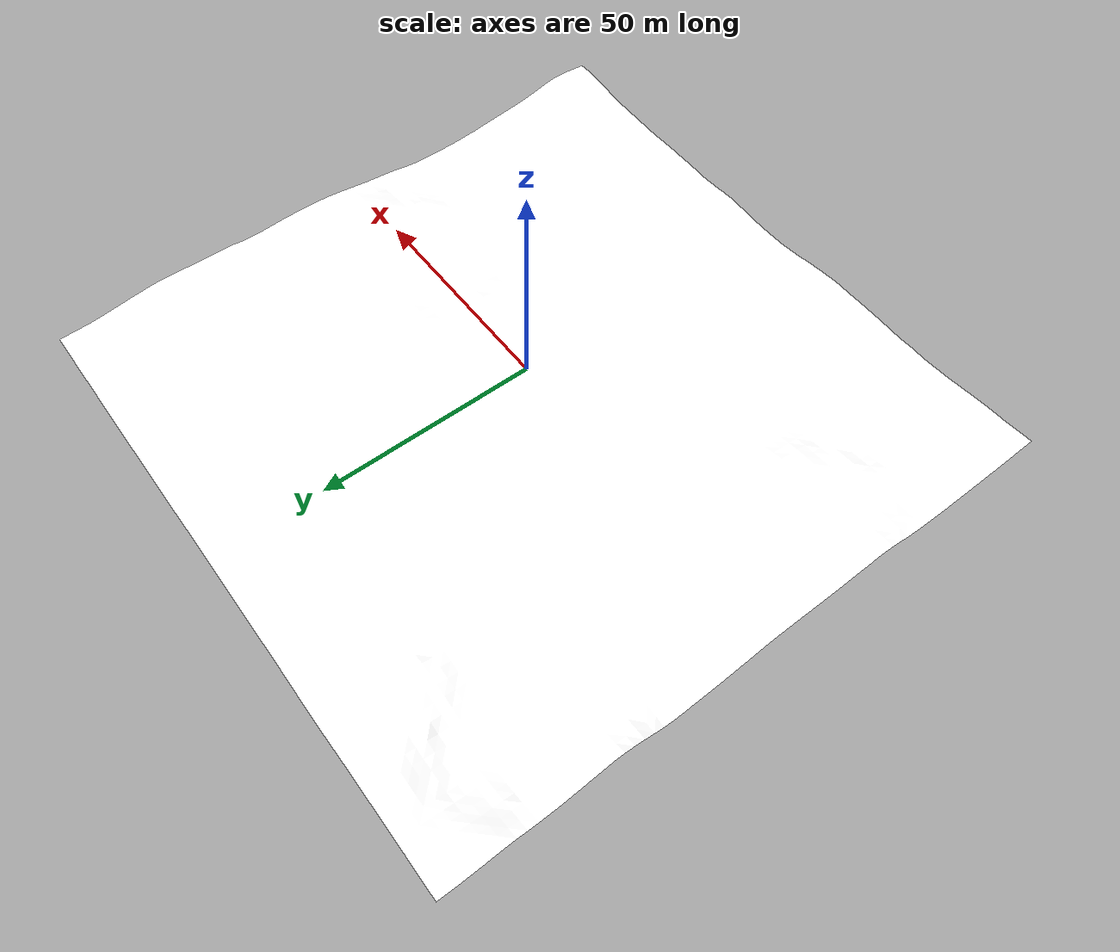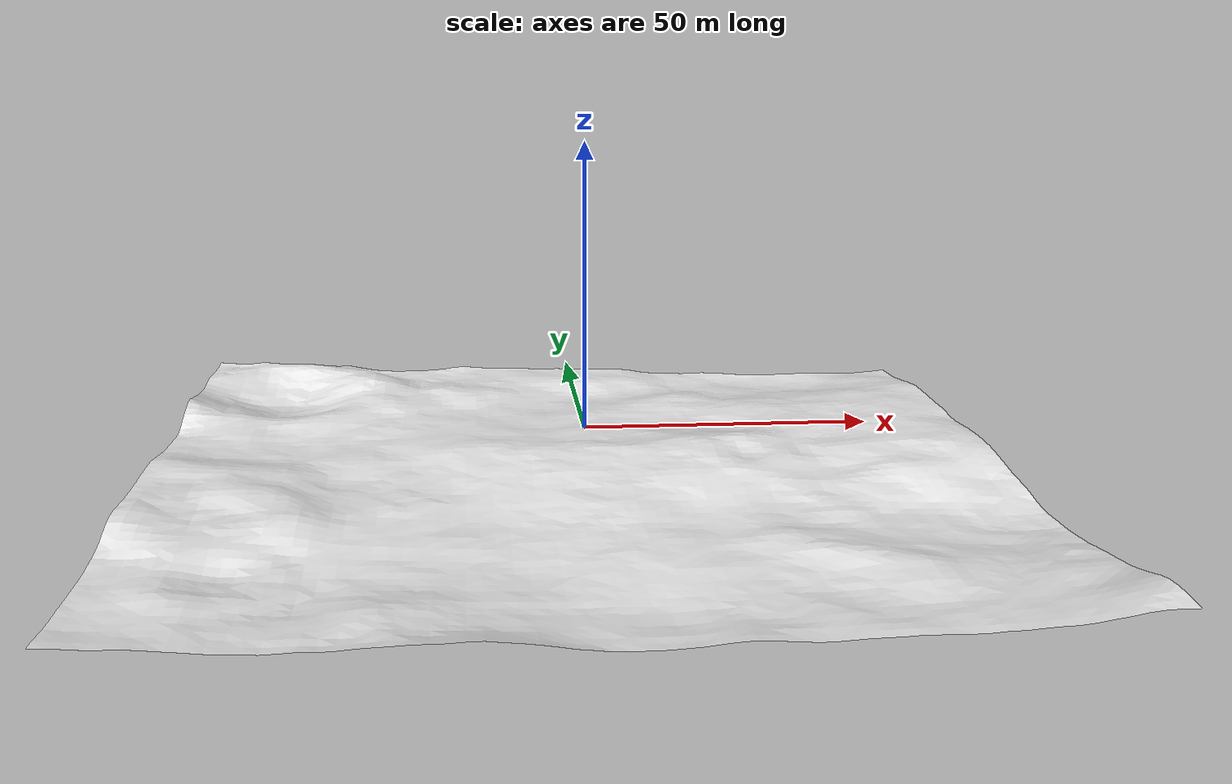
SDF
<?xml version="1.0" ?>
<sdf version="1.9">
  <model name="lunar_surface5">
    <static>True</static>
    <link name="lunar_surface5_link">
      <visual name="lunar_surface5_visual">
        <geometry>
          <mesh>
            <uri>meshes/visual/lunar_surface5.obj</uri>
            <scale>50 50 50</scale>
          </mesh>
        </geometry>
        <material>
          <pbr>
            <metal>
              <albedo_map>materials/textures/lunar_surface_3_color.png</albedo_map>
              <roughness_map>materials/textures/lunar_surface_3_roughness.png</roughness_map>
              <metalness_map>materials/textures/lunar_surface_3_metalness.png</metalness_map>
              <normal_map>materials/textures/lunar_surface_3_normal.png</normal_map>
            </metal>
          </pbr>
          <diffuse>1.0 1.0 1.0</diffuse>
          <specular>0.05 0.05 0.05</specular>
        </material>
      </visual>
      <collision name="lunar_surface5_collision">
        <geometry>
          <mesh>
            <uri>meshes/collision/lunar_surface5.stl</uri>
            <scale>50 50 50</scale>
          </mesh>
        </geometry>
        <surface>
          <friction>
            <ode>
              <mu>50</mu>
            </ode>
            <bullet>
              <friction>1</friction>
              <friction2>1</friction2>
              <rolling_friction>0.1</rolling_friction>
            </bullet>
          </friction>
        </surface>
      </collision>
    </link>
  </model>
</sdf>
